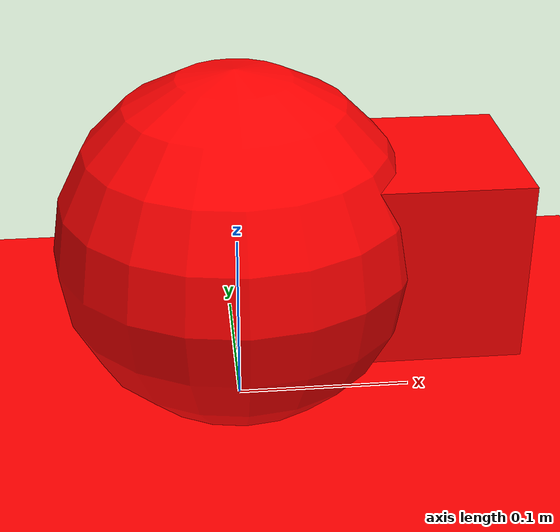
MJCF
<mujoco>
    <size njmax="3000" nconmax="1000"/>
    <option timestep="0.002"/>
    <default>
        <geom condim="3" density="1" rgba="1 0 0 1" />
        <joint damping=".001"/>
        <motor ctrlrange="-1 1" ctrllimited="true" forcerange="-.5 .5" forcelimited="true"/>
        <velocity ctrlrange="-1 1" ctrllimited="true" forcerange="-.5 .5" forcelimited="true"/>
        <site size="0.032" type="sphere"/>
    </default>
    <worldbody>
        <geom name="floor" size="5 5 0.1" type="plane" condim="3"/>

        <!-- Agent 1 -->
        <body name="robot1" pos="0 0 .1">
            <camera name="vision1" pos="0 0 .15" xyaxes="0 -1 0 .4 0 1" fovy="90"/>
            <joint type="slide" axis="1 0 0" name="x1" damping="0.01"/>
            <joint type="slide" axis="0 1 0" name="y1" damping="0.01"/>
            <joint type="hinge" axis="0 0 1" name="z1" damping="0.005"/>
            <geom name="robot1" type="sphere" size=".1" friction="1 0.01 0.01" rgba="1 0 0 1"/>
            <geom name="pointarrow1" pos="0.1 0 0" size="0.05 0.05 0.05" type="box" rgba="1 0 0 1"/>
            <site name="robot1" rgba="1 0 0 .1"/>
        </body>

        <!-- Agent 2 -->
        <body name="robot2" pos="0 0 .1">
            <camera name="vision2" pos="0 0 .15" xyaxes="0 -1 0 .4 0 1" fovy="90"/>
            <joint type="slide" axis="1 0 0" name="x2" damping="0.01"/>
            <joint type="slide" axis="0 1 0" name="y2" damping="0.01"/>
            <joint type="hinge" axis="0 0 1" name="z2" damping="0.005"/>
            <geom name="robot2" type="sphere" size=".1" friction="1 0.01 0.01" rgba="0 1 0 1"/>
            <geom name="pointarrow2" pos="0.1 0 0" size="0.05 0.05 0.05" type="box" rgba="0 1 0 1"/>
            <site name="robot2" rgba="0 1 0 .1"/>
        </body>

        <!-- Agent 3 -->
        <body name="robot3" pos="0 0 .1">
            <camera name="vision3" pos="0 0 .15" xyaxes="0 -1 0 .4 0 1" fovy="90"/>
            <joint type="slide" axis="1 0 0" name="x3" damping="0.01"/>
            <joint type="slide" axis="0 1 0" name="y3" damping="0.01"/>
            <joint type="hinge" axis="0 0 1" name="z3" damping="0.005"/>
            <geom name="robot3" type="sphere" size=".1" friction="1 0.01 0.01" rgba="0 0 1 1"/>
            <geom name="pointarrow3" pos="0.1 0 0" size="0.05 0.05 0.05" type="box" rgba="0 0 1 1"/>
            <site name="robot3" rgba="0 0 1 .1"/>
        </body>

        <!-- Agent 4 -->
        <body name="robot4" pos="0 0 .1">
            <camera name="vision4" pos="0 0 .15" xyaxes="0 -1 0 .4 0 1" fovy="90"/>
            <joint type="slide" axis="1 0 0" name="x4" damping="0.01"/>
            <joint type="slide" axis="0 1 0" name="y4" damping="0.01"/>
            <joint type="hinge" axis="0 0 1" name="z4" damping="0.005"/>
            <geom name="robot4" type="sphere" size=".1" friction="1 0.01 0.01" rgba="1 1 0 1"/>
            <geom name="pointarrow4" pos="0.1 0 0" size="0.05 0.05 0.05" type="box" rgba="1 1 0 1"/>
            <site name="robot4" rgba="1 1 0 .1"/>
        </body>
    </worldbody>
    <sensor>
        <!-- Agent 1 sensors -->
        <accelerometer site="robot1" name="accelerometer1"/>
        <velocimeter site="robot1" name="velocimeter1"/>
        <gyro site="robot1" name="gyro1"/>
        <magnetometer site="robot1" name="magnetometer1"/>
        <subtreecom body="robot1" name="subtreecom1"/>
        <subtreelinvel body="robot1" name="subtreelinvel1"/>
        <subtreeangmom body="robot1" name="subtreeangmom1"/>

        <!-- Agent 2 sensors -->
        <accelerometer site="robot2" name="accelerometer2"/>
        <velocimeter site="robot2" name="velocimeter2"/>
        <gyro site="robot2" name="gyro2"/>
        <magnetometer site="robot2" name="magnetometer2"/>
        <subtreecom body="robot2" name="subtreecom2"/>
        <subtreelinvel body="robot2" name="subtreelinvel2"/>
        <subtreeangmom body="robot2" name="subtreeangmom2"/>

        <!-- Agent 3 sensors -->
        <accelerometer site="robot3" name="accelerometer3"/>
        <velocimeter site="robot3" name="velocimeter3"/>
        <gyro site="robot3" name="gyro3"/>
        <magnetometer site="robot3" name="magnetometer3"/>
        <subtreecom body="robot3" name="subtreecom3"/>
        <subtreelinvel body="robot3" name="subtreelinvel3"/>
        <subtreeangmom body="robot3" name="subtreeangmom3"/>

        <!-- Agent 4 sensors -->
        <accelerometer site="robot4" name="accelerometer4"/>
        <velocimeter site="robot4" name="velocimeter4"/>
        <gyro site="robot4" name="gyro4"/>
        <magnetometer site="robot4" name="magnetometer4"/>
        <subtreecom body="robot4" name="subtreecom4"/>
        <subtreelinvel body="robot4" name="subtreelinvel4"/>
        <subtreeangmom body="robot4" name="subtreeangmom4"/>
    </sensor>
    <actuator>
        <!-- Agent 1 actuators -->
        <motor gear="0.3 0 0 0 0 0" site="robot1" name="x1"/>
        <motor gear="0.3 0 0 0 0 0" joint="z1" name="z1"/>

        <!-- Agent 2 actuators -->
        <motor gear="0.3 0 0 0 0 0" site="robot2" name="x2"/>
        <motor gear="0.3 0 0 0 0 0" joint="z2" name="z2"/>

        <!-- Agent 3 actuators -->
        <motor gear="0.3 0 0 0 0 0" site="robot3" name="x3"/>
        <motor gear="0.3 0 0 0 0 0" joint="z3" name="z3"/>

        <!-- Agent 4 actuators -->
        <motor gear="0.3 0 0 0 0 0" site="robot4" name="x4"/>
        <motor gear="0.3 0 0 0 0 0" joint="z4" name="z4"/>
    </actuator>
</mujoco>
